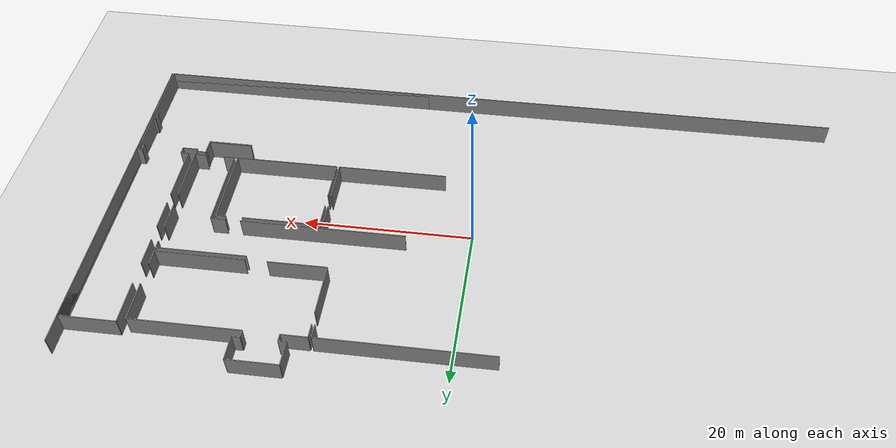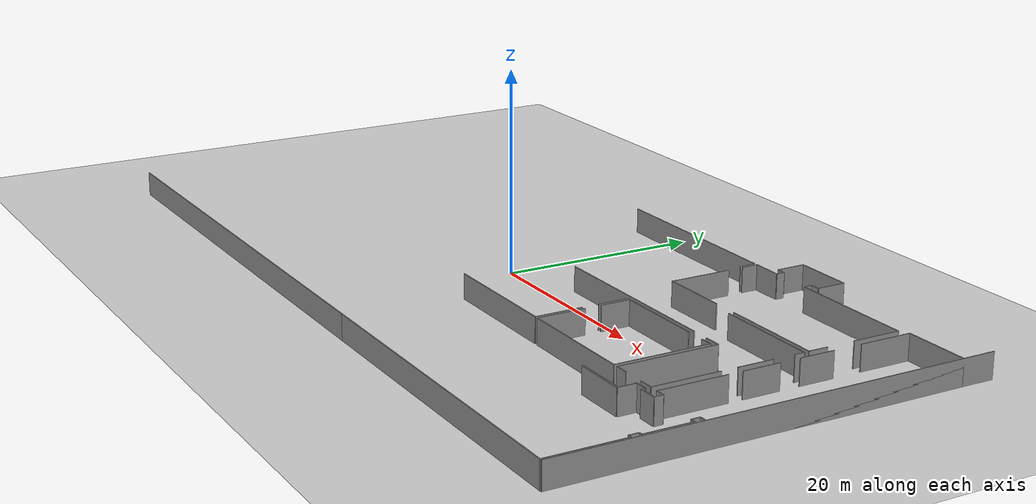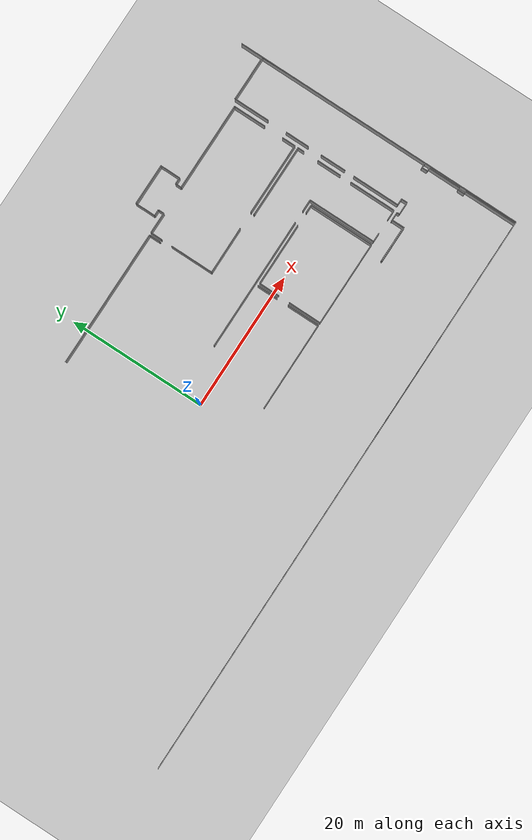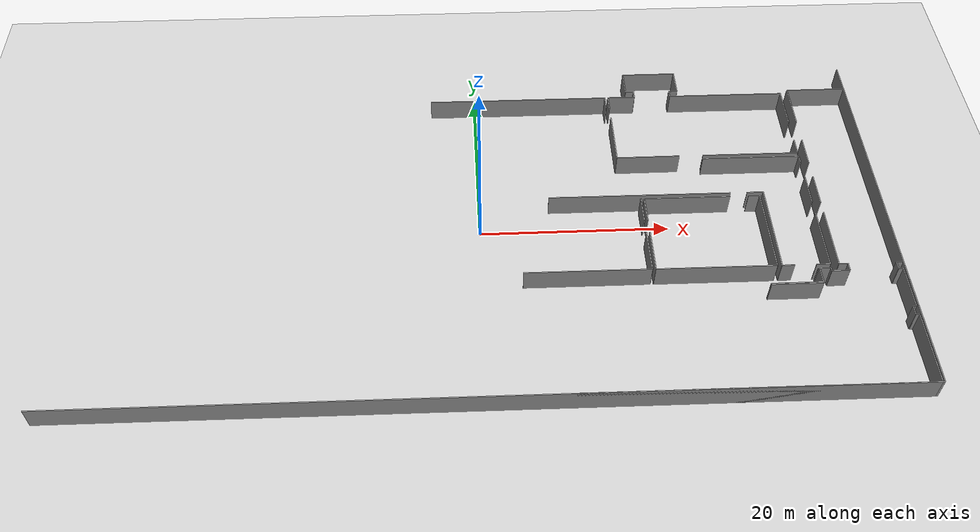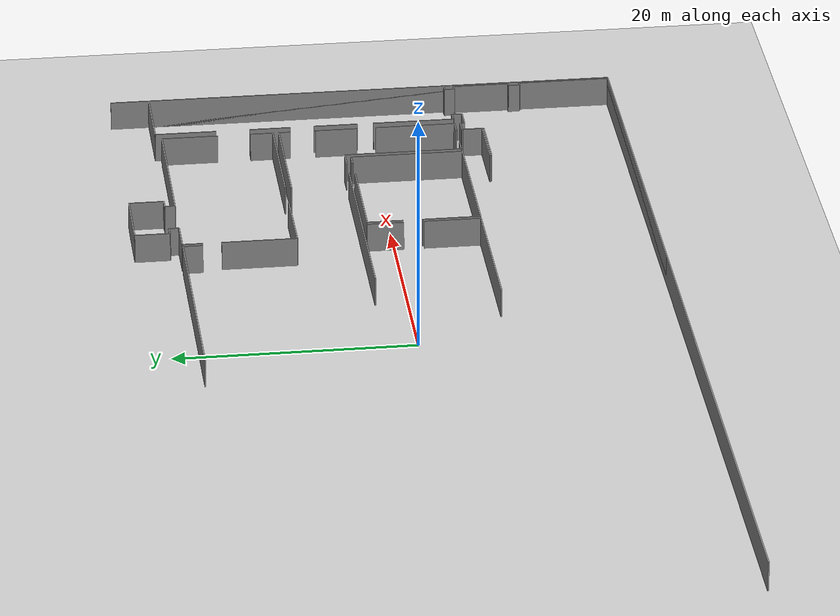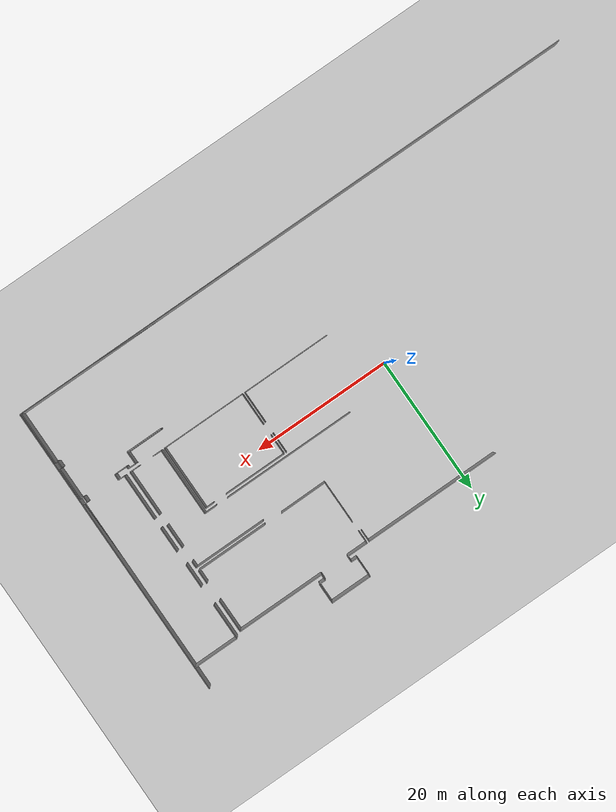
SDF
<sdf version="1.6">
 <world name="default">
  <model name="ground_plane">
   <static>1</static>
   <link name="link">
    <collision name="collision">
     <geometry><plane><normal>0 0 1</normal><size>100 100</size></plane></geometry>
     <surface><friction><ode><mu>100</mu><mu2>50</mu2></ode></friction></surface>
    </collision>
    <visual name="visual">
     <cast_shadows>0</cast_shadows>
     <geometry><plane><normal>0 0 1</normal><size>100 100</size></plane></geometry>
     <material>
      <script><uri>file://media/materials/scripts/gazebo.material</uri><name>Gazebo/Grey</name></script>
     </material>
    </visual>
   </link>
  </model>
  <model name="50052748">
   <static>1</static>
   <link name="Wall_18">
    <collision name="Wall_18_Collision">
     <geometry><box><size>10.5498647437 0.1 2.5</size></box></geometry>
     <pose>5.27493237185 0 1.25 0 0 0</pose>
    </collision>
    <visual name="Wall_18_Visual">
     <pose>5.27493237185 0 1.25 0 0 0</pose>
     <geometry><box><size>10.5498647437 0.1 2.5</size></box></geometry>
     <material>
      <script><uri>file://media/materials/scripts/gazebo.material</uri><name>Gazebo/Grey</name></script>
      <ambient>1 1 1 1</ambient>
     </material>
    </visual>
    <pose>67.1843987911 -13.728546372 0 0 0 0.0</pose>
   </link>
   <link name="Wall_19">
    <collision name="Wall_19_Collision">
     <geometry><box><size>0.96689549691 0.1 2.5</size></box></geometry>
     <pose>0.483447748455 0 1.25 0 0 0</pose>
    </collision>
    <visual name="Wall_19_Visual">
     <pose>0.483447748455 0 1.25 0 0 0</pose>
     <geometry><box><size>0.96689549691 0.1 2.5</size></box></geometry>
     <material>
      <script><uri>file://media/materials/scripts/gazebo.material</uri><name>Gazebo/Grey</name></script>
      <ambient>1 1 1 1</ambient>
     </material>
    </visual>
    <pose>77.7342635348 -13.728546372 0 0 0 -1.57079632679</pose>
   </link>
   <link name="Wall_20">
    <collision name="Wall_20_Collision">
     <geometry><box><size>3.53581406792 0.1 2.5</size></box></geometry>
     <pose>1.76790703396 0 1.25 0 0 0</pose>
    </collision>
    <visual name="Wall_20_Visual">
     <pose>1.76790703396 0 1.25 0 0 0</pose>
     <geometry><box><size>3.53581406792 0.1 2.5</size></box></geometry>
     <material>
      <script><uri>file://media/materials/scripts/gazebo.material</uri><name>Gazebo/Grey</name></script>
      <ambient>1 1 1 1</ambient>
     </material>
    </visual>
    <pose>77.7342635348 -16.8539625087 0 0 0 -1.57079632679</pose>
   </link>
   <link name="Wall_21">
    <collision name="Wall_21_Collision">
     <geometry><box><size>6.75850313823 0.1 2.5</size></box></geometry>
     <pose>3.37925156911 0 1.25 0 0 0</pose>
    </collision>
    <visual name="Wall_21_Visual">
     <pose>3.37925156911 0 1.25 0 0 0</pose>
     <geometry><box><size>6.75850313823 0.1 2.5</size></box></geometry>
     <material>
      <script><uri>file://media/materials/scripts/gazebo.material</uri><name>Gazebo/Grey</name></script>
      <ambient>1 1 1 1</ambient>
     </material>
    </visual>
    <pose>77.7342635348 -22.0008040553 0 0 0 -1.57079632679</pose>
   </link>
   <link name="Wall_22">
    <collision name="Wall_22_Collision">
     <geometry><box><size>1.40392617403 0.1 2.5</size></box></geometry>
     <pose>0.701963087014 0 1.25 0 0 0</pose>
    </collision>
    <visual name="Wall_22_Visual">
     <pose>0.701963087014 0 1.25 0 0 0</pose>
     <geometry><box><size>1.40392617403 0.1 2.5</size></box></geometry>
     <material>
      <script><uri>file://media/materials/scripts/gazebo.material</uri><name>Gazebo/Grey</name></script>
      <ambient>1 1 1 1</ambient>
     </material>
    </visual>
    <pose>77.7342635348 -28.7593071935 0 0 0 3.14159265359</pose>
   </link>
   <link name="Wall_23">
    <collision name="Wall_23_Collision">
     <geometry><box><size>1.29460509345 0.1 2.5</size></box></geometry>
     <pose>0.647302546725 0 1.25 0 0 0</pose>
    </collision>
    <visual name="Wall_23_Visual">
     <pose>0.647302546725 0 1.25 0 0 0</pose>
     <geometry><box><size>1.29460509345 0.1 2.5</size></box></geometry>
     <material>
      <script><uri>file://media/materials/scripts/gazebo.material</uri><name>Gazebo/Grey</name></script>
      <ambient>1 1 1 1</ambient>
     </material>
    </visual>
    <pose>74.1246387141 -28.7593071935 0 0 0 3.14159265359</pose>
   </link>
   <link name="Wall_24">
    <collision name="Wall_24_Collision">
     <geometry><box><size>9.9336337338 0.1 2.5</size></box></geometry>
     <pose>4.9668168669 0 1.25 0 0 0</pose>
    </collision>
    <visual name="Wall_24_Visual">
     <pose>4.9668168669 0 1.25 0 0 0</pose>
     <geometry><box><size>9.9336337338 0.1 2.5</size></box></geometry>
     <material>
      <script><uri>file://media/materials/scripts/gazebo.material</uri><name>Gazebo/Grey</name></script>
      <ambient>1 1 1 1</ambient>
     </material>
    </visual>
    <pose>72.8300336207 -28.7593071935 0 0 0 1.57079632679</pose>
   </link>
   <link name="Wall_25">
    <collision name="Wall_25_Collision">
     <geometry><box><size>1.73569409374 0.1 2.5</size></box></geometry>
     <pose>0.867847046872 0 1.25 0 0 0</pose>
    </collision>
    <visual name="Wall_25_Visual">
     <pose>0.867847046872 0 1.25 0 0 0</pose>
     <geometry><box><size>1.73569409374 0.1 2.5</size></box></geometry>
     <material>
      <script><uri>file://media/materials/scripts/gazebo.material</uri><name>Gazebo/Grey</name></script>
      <ambient>1 1 1 1</ambient>
     </material>
    </visual>
    <pose>72.8300336207 -18.8256734597 0 0 0 3.14159265359</pose>
   </link>
   <link name="Wall_26">
    <collision name="Wall_26_Collision">
     <geometry><box><size>19.3869902841 0.1 2.5</size></box></geometry>
     <pose>9.69349514206 0 1.25 0 0 0</pose>
    </collision>
    <visual name="Wall_26_Visual">
     <pose>9.69349514206 0 1.25 0 0 0</pose>
     <geometry><box><size>19.3869902841 0.1 2.5</size></box></geometry>
     <material>
      <script><uri>file://media/materials/scripts/gazebo.material</uri><name>Gazebo/Grey</name></script>
      <ambient>1 1 1 1</ambient>
     </material>
    </visual>
    <pose>69.3134965878 -18.8256734597 0 0 0 3.14159265359</pose>
   </link>
   <link name="Wall_111">
    <collision name="Wall_111_Collision">
     <geometry><box><size>1.64285995107 0.1 2.5</size></box></geometry>
     <pose>0.821429975536 0 1.25 0 0 0</pose>
    </collision>
    <visual name="Wall_111_Visual">
     <pose>0.821429975536 0 1.25 0 0 0</pose>
     <geometry><box><size>1.64285995107 0.1 2.5</size></box></geometry>
     <material>
      <script><uri>file://media/materials/scripts/gazebo.material</uri><name>Gazebo/Grey</name></script>
      <ambient>1 1 1 1</ambient>
     </material>
    </visual>
    <pose>57.4607832817 -5.41697368304 0 0 0 1.57079632679</pose>
   </link>
   <link name="Wall_112">
    <collision name="Wall_112_Collision">
     <geometry><box><size>19.9464047695 0.1 2.5</size></box></geometry>
     <pose>9.97320238477 0 1.25 0 0 0</pose>
    </collision>
    <visual name="Wall_112_Visual">
     <pose>9.97320238477 0 1.25 0 0 0</pose>
     <geometry><box><size>19.9464047695 0.1 2.5</size></box></geometry>
     <material>
      <script><uri>file://media/materials/scripts/gazebo.material</uri><name>Gazebo/Grey</name></script>
      <ambient>1 1 1 1</ambient>
     </material>
    </visual>
    <pose>57.4607832817 -3.77411373197 0 0 0 3.14159265359</pose>
   </link>
   <link name="Wall_114">
    <collision name="Wall_114_Collision">
     <geometry><box><size>6.26186583945 0.1 2.5</size></box></geometry>
     <pose>3.13093291972 0 1.25 0 0 0</pose>
    </collision>
    <visual name="Wall_114_Visual">
     <pose>3.13093291972 0 1.25 0 0 0</pose>
     <geometry><box><size>6.26186583945 0.1 2.5</size></box></geometry>
     <material>
      <script><uri>file://media/materials/scripts/gazebo.material</uri><name>Gazebo/Grey</name></script>
      <ambient>1 1 1 1</ambient>
     </material>
    </visual>
    <pose>57.8186766569 -13.2623464971 0 0 0 1.57079632679</pose>
   </link>
   <link name="Wall_115">
    <collision name="Wall_115_Collision">
     <geometry><box><size>1.68674057042 0.1 2.5</size></box></geometry>
     <pose>0.843370285211 0 1.25 0 0 0</pose>
    </collision>
    <visual name="Wall_115_Visual">
     <pose>0.843370285211 0 1.25 0 0 0</pose>
     <geometry><box><size>1.68674057042 0.1 2.5</size></box></geometry>
     <material>
      <script><uri>file://media/materials/scripts/gazebo.material</uri><name>Gazebo/Grey</name></script>
      <ambient>1 1 1 1</ambient>
     </material>
    </visual>
    <pose>57.8186766569 -5.43739212153 0 0 0 1.57079632679</pose>
   </link>
   <link name="Wall_116">
    <collision name="Wall_116_Collision">
     <geometry><box><size>3.03106012279 0.1 2.5</size></box></geometry>
     <pose>1.51553006139 0 1.25 0 0 0</pose>
    </collision>
    <visual name="Wall_116_Visual">
     <pose>1.51553006139 0 1.25 0 0 0</pose>
     <geometry><box><size>3.03106012279 0.1 2.5</size></box></geometry>
     <material>
      <script><uri>file://media/materials/scripts/gazebo.material</uri><name>Gazebo/Grey</name></script>
      <ambient>1 1 1 1</ambient>
     </material>
    </visual>
    <pose>57.8186766569 -3.7506515511 0 0 0 0.0</pose>
   </link>
   <link name="Wall_117">
    <collision name="Wall_117_Collision">
     <geometry><box><size>0.837029155247 0.1 2.5</size></box></geometry>
     <pose>0.418514577624 0 1.25 0 0 0</pose>
    </collision>
    <visual name="Wall_117_Visual">
     <pose>0.418514577624 0 1.25 0 0 0</pose>
     <geometry><box><size>0.837029155247 0.1 2.5</size></box></geometry>
     <material>
      <script><uri>file://media/materials/scripts/gazebo.material</uri><name>Gazebo/Grey</name></script>
      <ambient>1 1 1 1</ambient>
     </material>
    </visual>
    <pose>60.8497367797 -3.7506515511 0 0 0 1.57079632679</pose>
   </link>
   <link name="Wall_118">
    <collision name="Wall_118_Collision">
     <geometry><box><size>0.900440454887 0.1 2.5</size></box></geometry>
     <pose>0.450220227444 0 1.25 0 0 0</pose>
    </collision>
    <visual name="Wall_118_Visual">
     <pose>0.450220227444 0 1.25 0 0 0</pose>
     <geometry><box><size>0.900440454887 0.1 2.5</size></box></geometry>
     <material>
      <script><uri>file://media/materials/scripts/gazebo.material</uri><name>Gazebo/Grey</name></script>
      <ambient>1 1 1 1</ambient>
     </material>
    </visual>
    <pose>60.8497367797 -2.91362239586 0 0 0 3.14159265359</pose>
   </link>
   <link name="Wall_119">
    <collision name="Wall_119_Collision">
     <geometry><box><size>2.91362239586 0.1 2.5</size></box></geometry>
     <pose>1.45681119793 0 1.25 0 0 0</pose>
    </collision>
    <visual name="Wall_119_Visual">
     <pose>1.45681119793 0 1.25 0 0 0</pose>
     <geometry><box><size>2.91362239586 0.1 2.5</size></box></geometry>
     <material>
      <script><uri>file://media/materials/scripts/gazebo.material</uri><name>Gazebo/Grey</name></script>
      <ambient>1 1 1 1</ambient>
     </material>
    </visual>
    <pose>59.9492963248 -2.91362239586 0 0 0 1.57079632679</pose>
   </link>
   <link name="Wall_120">
    <collision name="Wall_120_Collision">
     <geometry><box><size>5.93796092088 0.1 2.5</size></box></geometry>
     <pose>2.96898046044 0 1.25 0 0 0</pose>
    </collision>
    <visual name="Wall_120_Visual">
     <pose>2.96898046044 0 1.25 0 0 0</pose>
     <geometry><box><size>5.93796092088 0.1 2.5</size></box></geometry>
     <material>
      <script><uri>file://media/materials/scripts/gazebo.material</uri><name>Gazebo/Grey</name></script>
      <ambient>1 1 1 1</ambient>
     </material>
    </visual>
    <pose>59.9492963248 -0.0 0 0 0 0.0</pose>
   </link>
   <link name="Wall_121">
    <collision name="Wall_121_Collision">
     <geometry><box><size>2.91527108965 0.1 2.5</size></box></geometry>
     <pose>1.45763554482 0 1.25 0 0 0</pose>
    </collision>
    <visual name="Wall_121_Visual">
     <pose>1.45763554482 0 1.25 0 0 0</pose>
     <geometry><box><size>2.91527108965 0.1 2.5</size></box></geometry>
     <material>
      <script><uri>file://media/materials/scripts/gazebo.material</uri><name>Gazebo/Grey</name></script>
      <ambient>1 1 1 1</ambient>
     </material>
    </visual>
    <pose>65.8872572457 -0.0 0 0 0 -1.57079632679</pose>
   </link>
   <link name="Wall_122">
    <collision name="Wall_122_Collision">
     <geometry><box><size>0.930243765718 0.1 2.5</size></box></geometry>
     <pose>0.465121882859 0 1.25 0 0 0</pose>
    </collision>
    <visual name="Wall_122_Visual">
     <pose>0.465121882859 0 1.25 0 0 0</pose>
     <geometry><box><size>0.930243765718 0.1 2.5</size></box></geometry>
     <material>
      <script><uri>file://media/materials/scripts/gazebo.material</uri><name>Gazebo/Grey</name></script>
      <ambient>1 1 1 1</ambient>
     </material>
    </visual>
    <pose>65.8872572457 -2.91527108965 0 0 0 3.14159265359</pose>
   </link>
   <link name="Wall_123">
    <collision name="Wall_123_Collision">
     <geometry><box><size>0.853516093154 0.1 2.5</size></box></geometry>
     <pose>0.426758046577 0 1.25 0 0 0</pose>
    </collision>
    <visual name="Wall_123_Visual">
     <pose>0.426758046577 0 1.25 0 0 0</pose>
     <geometry><box><size>0.853516093154 0.1 2.5</size></box></geometry>
     <material>
      <script><uri>file://media/materials/scripts/gazebo.material</uri><name>Gazebo/Grey</name></script>
      <ambient>1 1 1 1</ambient>
     </material>
    </visual>
    <pose>64.95701348 -2.91527108965 0 0 0 -1.57079632679</pose>
   </link>
   <link name="Wall_124">
    <collision name="Wall_124_Collision">
     <geometry><box><size>12.7667237791 0.1 2.5</size></box></geometry>
     <pose>6.38336188956 0 1.25 0 0 0</pose>
    </collision>
    <visual name="Wall_124_Visual">
     <pose>6.38336188956 0 1.25 0 0 0</pose>
     <geometry><box><size>12.7667237791 0.1 2.5</size></box></geometry>
     <material>
      <script><uri>file://media/materials/scripts/gazebo.material</uri><name>Gazebo/Grey</name></script>
      <ambient>1 1 1 1</ambient>
     </material>
    </visual>
    <pose>64.95701348 -3.7687871828 0 0 0 0.0</pose>
   </link>
   <link name="Wall_125">
    <collision name="Wall_125_Collision">
     <geometry><box><size>4.75014045603 0.1 2.5</size></box></geometry>
     <pose>2.37507022801 0 1.25 0 0 0</pose>
    </collision>
    <visual name="Wall_125_Visual">
     <pose>2.37507022801 0 1.25 0 0 0</pose>
     <geometry><box><size>4.75014045603 0.1 2.5</size></box></geometry>
     <material>
      <script><uri>file://media/materials/scripts/gazebo.material</uri><name>Gazebo/Grey</name></script>
      <ambient>1 1 1 1</ambient>
     </material>
    </visual>
    <pose>77.7237372591 -3.7687871828 0 0 0 -1.57079632679</pose>
   </link>
   <link name="Wall_126">
    <collision name="Wall_126_Collision">
     <geometry><box><size>1.93074725144 0.1 2.5</size></box></geometry>
     <pose>0.965373625719 0 1.25 0 0 0</pose>
    </collision>
    <visual name="Wall_126_Visual">
     <pose>0.965373625719 0 1.25 0 0 0</pose>
     <geometry><box><size>1.93074725144 0.1 2.5</size></box></geometry>
     <material>
      <script><uri>file://media/materials/scripts/gazebo.material</uri><name>Gazebo/Grey</name></script>
      <ambient>1 1 1 1</ambient>
     </material>
    </visual>
    <pose>77.7237372591 -11.2957084501 0 0 0 -1.57079632679</pose>
   </link>
   <link name="Wall_127">
    <collision name="Wall_127_Collision">
     <geometry><box><size>10.4699665062 0.1 2.5</size></box></geometry>
     <pose>5.23498325308 0 1.25 0 0 0</pose>
    </collision>
    <visual name="Wall_127_Visual">
     <pose>5.23498325308 0 1.25 0 0 0</pose>
     <geometry><box><size>10.4699665062 0.1 2.5</size></box></geometry>
     <material>
      <script><uri>file://media/materials/scripts/gazebo.material</uri><name>Gazebo/Grey</name></script>
      <ambient>1 1 1 1</ambient>
     </material>
    </visual>
    <pose>77.7237372591 -13.2264557015 0 0 0 3.14159265359</pose>
   </link>
   <link name="Wall_128">
    <collision name="Wall_128_Collision">
     <geometry><box><size>6.86563522402 0.1 2.5</size></box></geometry>
     <pose>3.43281761201 0 1.25 0 0 0</pose>
    </collision>
    <visual name="Wall_128_Visual">
     <pose>3.43281761201 0 1.25 0 0 0</pose>
     <geometry><box><size>6.86563522402 0.1 2.5</size></box></geometry>
     <material>
      <script><uri>file://media/materials/scripts/gazebo.material</uri><name>Gazebo/Grey</name></script>
      <ambient>1 1 1 1</ambient>
     </material>
    </visual>
    <pose>64.6842180689 -13.2264557015 0 0 0 -3.13636502965</pose>
   </link>
   <link name="Wall_137">
    <collision name="Wall_137_Collision">
     <geometry><box><size>3.05553688445 0.1 2.5</size></box></geometry>
     <pose>1.52776844223 0 1.25 0 0 0</pose>
    </collision>
    <visual name="Wall_137_Visual">
     <pose>1.52776844223 0 1.25 0 0 0</pose>
     <geometry><box><size>3.05553688445 0.1 2.5</size></box></geometry>
     <material>
      <script><uri>file://media/materials/scripts/gazebo.material</uri><name>Gazebo/Grey</name></script>
      <ambient>1 1 1 1</ambient>
     </material>
    </visual>
    <pose>59.6956511262 -19.2656210566 0 0 0 -1.57079632679</pose>
   </link>
   <link name="Wall_138">
    <collision name="Wall_138_Collision">
     <geometry><box><size>4.75977897357 0.1 2.5</size></box></geometry>
     <pose>2.37988948679 0 1.25 0 0 0</pose>
    </collision>
    <visual name="Wall_138_Visual">
     <pose>2.37988948679 0 1.25 0 0 0</pose>
     <geometry><box><size>4.75977897357 0.1 2.5</size></box></geometry>
     <material>
      <script><uri>file://media/materials/scripts/gazebo.material</uri><name>Gazebo/Grey</name></script>
      <ambient>1 1 1 1</ambient>
     </material>
    </visual>
    <pose>59.6956511262 -23.9930602674 0 0 0 -1.57079632679</pose>
   </link>
   <link name="Wall_139">
    <collision name="Wall_139_Collision">
     <geometry><box><size>13.0069365551 0.1 2.5</size></box></geometry>
     <pose>6.50346827757 0 1.25 0 0 0</pose>
    </collision>
    <visual name="Wall_139_Visual">
     <pose>6.50346827757 0 1.25 0 0 0</pose>
     <geometry><box><size>13.0069365551 0.1 2.5</size></box></geometry>
     <material>
      <script><uri>file://media/materials/scripts/gazebo.material</uri><name>Gazebo/Grey</name></script>
      <ambient>1 1 1 1</ambient>
     </material>
    </visual>
    <pose>59.6956511262 -28.7528392409 0 0 0 -3.14030560282</pose>
   </link>
   <link name="Wall_140">
    <collision name="Wall_140_Collision">
     <geometry><box><size>12.3069918567 0.1 2.5</size></box></geometry>
     <pose>6.15349592836 0 1.25 0 0 0</pose>
    </collision>
    <visual name="Wall_140_Visual">
     <pose>6.15349592836 0 1.25 0 0 0</pose>
     <geometry><box><size>12.3069918567 0.1 2.5</size></box></geometry>
     <material>
      <script><uri>file://media/materials/scripts/gazebo.material</uri><name>Gazebo/Grey</name></script>
      <ambient>1 1 1 1</ambient>
     </material>
    </visual>
    <pose>60.0537981466 -28.7672970173 0 0 0 0.0</pose>
   </link>
   <link name="Wall_141">
    <collision name="Wall_141_Collision">
     <geometry><box><size>9.45665393791 0.1 2.5</size></box></geometry>
     <pose>4.72832696895 0 1.25 0 0 0</pose>
    </collision>
    <visual name="Wall_141_Visual">
     <pose>4.72832696895 0 1.25 0 0 0</pose>
     <geometry><box><size>9.45665393791 0.1 2.5</size></box></geometry>
     <material>
      <script><uri>file://media/materials/scripts/gazebo.material</uri><name>Gazebo/Grey</name></script>
      <ambient>1 1 1 1</ambient>
     </material>
    </visual>
    <pose>72.3607900033 -28.7672970173 0 0 0 1.57079632679</pose>
   </link>
   <link name="Wall_142">
    <collision name="Wall_142_Collision">
     <geometry><box><size>1.20456104796 0.1 2.5</size></box></geometry>
     <pose>0.60228052398 0 1.25 0 0 0</pose>
    </collision>
    <visual name="Wall_142_Visual">
     <pose>0.60228052398 0 1.25 0 0 0</pose>
     <geometry><box><size>1.20456104796 0.1 2.5</size></box></geometry>
     <material>
      <script><uri>file://media/materials/scripts/gazebo.material</uri><name>Gazebo/Grey</name></script>
      <ambient>1 1 1 1</ambient>
     </material>
    </visual>
    <pose>72.3607900033 -19.3106430794 0 0 0 3.14159265359</pose>
   </link>
   <link name="Wall_143">
    <collision name="Wall_143_Collision">
     <geometry><box><size>9.15189923184 0.1 2.5</size></box></geometry>
     <pose>4.57594961592 0 1.25 0 0 0</pose>
    </collision>
    <visual name="Wall_143_Visual">
     <pose>4.57594961592 0 1.25 0 0 0</pose>
     <geometry><box><size>9.15189923184 0.1 2.5</size></box></geometry>
     <material>
      <script><uri>file://media/materials/scripts/gazebo.material</uri><name>Gazebo/Grey</name></script>
      <ambient>1 1 1 1</ambient>
     </material>
    </visual>
    <pose>69.2056973785 -19.3106430794 0 0 0 3.14159265359</pose>
   </link>
   <link name="Wall_144">
    <collision name="Wall_144_Collision">
     <geometry><box><size>2.98717950344 0.1 2.5</size></box></geometry>
     <pose>1.49358975172 0 1.25 0 0 0</pose>
    </collision>
    <visual name="Wall_144_Visual">
     <pose>1.49358975172 0 1.25 0 0 0</pose>
     <geometry><box><size>2.98717950344 0.1 2.5</size></box></geometry>
     <material>
      <script><uri>file://media/materials/scripts/gazebo.material</uri><name>Gazebo/Grey</name></script>
      <ambient>1 1 1 1</ambient>
     </material>
    </visual>
    <pose>60.0537981466 -19.3106430794 0 0 0 -1.57079632679</pose>
   </link>
   <link name="Wall_145">
    <collision name="Wall_145_Collision">
     <geometry><box><size>4.84665245408 0.1 2.5</size></box></geometry>
     <pose>2.42332622704 0 1.25 0 0 0</pose>
    </collision>
    <visual name="Wall_145_Visual">
     <pose>2.42332622704 0 1.25 0 0 0</pose>
     <geometry><box><size>4.84665245408 0.1 2.5</size></box></geometry>
     <material>
      <script><uri>file://media/materials/scripts/gazebo.material</uri><name>Gazebo/Grey</name></script>
      <ambient>1 1 1 1</ambient>
     </material>
    </visual>
    <pose>60.0537981466 -23.9206445632 0 0 0 -1.57079632679</pose>
   </link>
   <link name="Wall_177">
    <collision name="Wall_177_Collision">
     <geometry><box><size>0.139504859208 0.1 2.5</size></box></geometry>
     <pose>0.0697524296039 0 1.25 0 0 0</pose>
    </collision>
    <visual name="Wall_177_Visual">
     <pose>0.0697524296039 0 1.25 0 0 0</pose>
     <geometry><box><size>0.139504859208 0.1 2.5</size></box></geometry>
     <material>
      <script><uri>file://media/materials/scripts/gazebo.material</uri><name>Gazebo/Grey</name></script>
      <ambient>1 1 1 1</ambient>
     </material>
    </visual>
    <pose>76.3728229316 -29.2714168494 0 0 0 0.0</pose>
   </link>
   <link name="Wall_178">
    <collision name="Wall_178_Collision">
     <geometry><box><size>1.73341128696 0.1 2.5</size></box></geometry>
     <pose>0.866705643479 0 1.25 0 0 0</pose>
    </collision>
    <visual name="Wall_178_Visual">
     <pose>0.866705643479 0 1.25 0 0 0</pose>
     <geometry><box><size>1.73341128696 0.1 2.5</size></box></geometry>
     <material>
      <script><uri>file://media/materials/scripts/gazebo.material</uri><name>Gazebo/Grey</name></script>
      <ambient>1 1 1 1</ambient>
     </material>
    </visual>
    <pose>76.5123277908 -29.2714168494 0 0 0 -1.57079632679</pose>
   </link>
   <link name="Wall_179">
    <collision name="Wall_179_Collision">
     <geometry><box><size>5.21900360557 0.1 2.5</size></box></geometry>
     <pose>2.60950180278 0 1.25 0 0 0</pose>
    </collision>
    <visual name="Wall_179_Visual">
     <pose>2.60950180278 0 1.25 0 0 0</pose>
     <geometry><box><size>5.21900360557 0.1 2.5</size></box></geometry>
     <material>
      <script><uri>file://media/materials/scripts/gazebo.material</uri><name>Gazebo/Grey</name></script>
      <ambient>1 1 1 1</ambient>
     </material>
    </visual>
    <pose>76.5123277908 -31.0048281364 0 0 0 3.14159265359</pose>
   </link>
   <link name="Wall_180">
    <collision name="Wall_180_Collision">
     <geometry><box><size>0.116042678341 0.1 2.5</size></box></geometry>
     <pose>0.0580213391706 0 1.25 0 0 0</pose>
    </collision>
    <visual name="Wall_180_Visual">
     <pose>0.0580213391706 0 1.25 0 0 0</pose>
     <geometry><box><size>0.116042678341 0.1 2.5</size></box></geometry>
     <material>
      <script><uri>file://media/materials/scripts/gazebo.material</uri><name>Gazebo/Grey</name></script>
      <ambient>1 1 1 1</ambient>
     </material>
    </visual>
    <pose>71.2933241852 -31.0048281364 0 0 0 -1.57079632679</pose>
   </link>
   <link name="Wall_181">
    <collision name="Wall_181_Collision">
     <geometry><box><size>5.24715822261 0.1 2.5</size></box></geometry>
     <pose>2.6235791113 0 1.25 0 0 0</pose>
    </collision>
    <visual name="Wall_181_Visual">
     <pose>2.6235791113 0 1.25 0 0 0</pose>
     <geometry><box><size>5.24715822261 0.1 2.5</size></box></geometry>
     <material>
      <script><uri>file://media/materials/scripts/gazebo.material</uri><name>Gazebo/Grey</name></script>
      <ambient>1 1 1 1</ambient>
     </material>
    </visual>
    <pose>71.2933241852 -31.1208708147 0 0 0 0.0</pose>
   </link>
   <link name="Wall_182">
    <collision name="Wall_182_Collision">
     <geometry><box><size>1.86289716082 0.1 2.5</size></box></geometry>
     <pose>0.931448580411 0 1.25 0 0 0</pose>
    </collision>
    <visual name="Wall_182_Visual">
     <pose>0.931448580411 0 1.25 0 0 0</pose>
     <geometry><box><size>1.86289716082 0.1 2.5</size></box></geometry>
     <material>
      <script><uri>file://media/materials/scripts/gazebo.material</uri><name>Gazebo/Grey</name></script>
      <ambient>1 1 1 1</ambient>
     </material>
    </visual>
    <pose>76.5404824078 -31.1208708147 0 0 0 1.57079632679</pose>
   </link>
   <link name="Wall_183">
    <collision name="Wall_183_Collision">
     <geometry><box><size>1.15154920146 0.1 2.5</size></box></geometry>
     <pose>0.575774600731 0 1.25 0 0 0</pose>
    </collision>
    <visual name="Wall_183_Visual">
     <pose>0.575774600731 0 1.25 0 0 0</pose>
     <geometry><box><size>1.15154920146 0.1 2.5</size></box></geometry>
     <material>
      <script><uri>file://media/materials/scripts/gazebo.material</uri><name>Gazebo/Grey</name></script>
      <ambient>1 1 1 1</ambient>
     </material>
    </visual>
    <pose>76.5404824078 -29.2579736539 0 0 0 0.0</pose>
   </link>
   <link name="Wall_184">
    <collision name="Wall_184_Collision">
     <geometry><box><size>0.373999845276 0.1 2.5</size></box></geometry>
     <pose>0.186999922638 0 1.25 0 0 0</pose>
    </collision>
    <visual name="Wall_184_Visual">
     <pose>0.186999922638 0 1.25 0 0 0</pose>
     <geometry><box><size>0.373999845276 0.1 2.5</size></box></geometry>
     <material>
      <script><uri>file://media/materials/scripts/gazebo.material</uri><name>Gazebo/Grey</name></script>
      <ambient>1 1 1 1</ambient>
     </material>
    </visual>
    <pose>77.6920316093 -29.2579736539 0 0 0 -1.57079632679</pose>
   </link>
   <link name="Wall_185">
    <collision name="Wall_185_Collision">
     <geometry><box><size>1.8315719788 0.1 2.5</size></box></geometry>
     <pose>0.9157859894 0 1.25 0 0 0</pose>
    </collision>
    <visual name="Wall_185_Visual">
     <pose>0.9157859894 0 1.25 0 0 0</pose>
     <geometry><box><size>1.8315719788 0.1 2.5</size></box></geometry>
     <material>
      <script><uri>file://media/materials/scripts/gazebo.material</uri><name>Gazebo/Grey</name></script>
      <ambient>1 1 1 1</ambient>
     </material>
    </visual>
    <pose>77.6920316093 -29.6319734991 0 0 0 0.0</pose>
   </link>
   <link name="Wall_186">
    <collision name="Wall_186_Collision">
     <geometry><box><size>0.853516093154 0.1 2.5</size></box></geometry>
     <pose>0.426758046577 0 1.25 0 0 0</pose>
    </collision>
    <visual name="Wall_186_Visual">
     <pose>0.426758046577 0 1.25 0 0 0</pose>
     <geometry><box><size>0.853516093154 0.1 2.5</size></box></geometry>
     <material>
      <script><uri>file://media/materials/scripts/gazebo.material</uri><name>Gazebo/Grey</name></script>
      <ambient>1 1 1 1</ambient>
     </material>
    </visual>
    <pose>79.5236035881 -29.6319734991 0 0 0 1.57079632679</pose>
   </link>
   <link name="Wall_187">
    <collision name="Wall_187_Collision">
     <geometry><box><size>0.920605248173 0.1 2.5</size></box></geometry>
     <pose>0.460302624086 0 1.25 0 0 0</pose>
    </collision>
    <visual name="Wall_187_Visual">
     <pose>0.460302624086 0 1.25 0 0 0</pose>
     <geometry><box><size>0.920605248173 0.1 2.5</size></box></geometry>
     <material>
      <script><uri>file://media/materials/scripts/gazebo.material</uri><name>Gazebo/Grey</name></script>
      <ambient>1 1 1 1</ambient>
     </material>
    </visual>
    <pose>79.5236035881 -28.778457406 0 0 0 3.14159265359</pose>
   </link>
   <link name="Wall_188">
    <collision name="Wall_188_Collision">
     <geometry><box><size>6.86617552501 0.1 2.5</size></box></geometry>
     <pose>3.43308776251 0 1.25 0 0 0</pose>
    </collision>
    <visual name="Wall_188_Visual">
     <pose>3.43308776251 0 1.25 0 0 0</pose>
     <geometry><box><size>6.86617552501 0.1 2.5</size></box></geometry>
     <material>
      <script><uri>file://media/materials/scripts/gazebo.material</uri><name>Gazebo/Grey</name></script>
      <ambient>1 1 1 1</ambient>
     </material>
    </visual>
    <pose>78.6029983399 -28.778457406 0 0 0 1.57079632679</pose>
   </link>
   <link name="Wall_189">
    <collision name="Wall_189_Collision">
     <geometry><box><size>3.73035993522 0.1 2.5</size></box></geometry>
     <pose>1.86517996761 0 1.25 0 0 0</pose>
    </collision>
    <visual name="Wall_189_Visual">
     <pose>1.86517996761 0 1.25 0 0 0</pose>
     <geometry><box><size>3.73035993522 0.1 2.5</size></box></geometry>
     <material>
      <script><uri>file://media/materials/scripts/gazebo.material</uri><name>Gazebo/Grey</name></script>
      <ambient>1 1 1 1</ambient>
     </material>
    </visual>
    <pose>78.6029983399 -20.53143742 0 0 0 1.57079632679</pose>
   </link>
   <link name="Wall_190">
    <collision name="Wall_190_Collision">
     <geometry><box><size>3.50195243392 0.1 2.5</size></box></geometry>
     <pose>1.75097621696 0 1.25 0 0 0</pose>
    </collision>
    <visual name="Wall_190_Visual">
     <pose>1.75097621696 0 1.25 0 0 0</pose>
     <geometry><box><size>3.50195243392 0.1 2.5</size></box></geometry>
     <material>
      <script><uri>file://media/materials/scripts/gazebo.material</uri><name>Gazebo/Grey</name></script>
      <ambient>1 1 1 1</ambient>
     </material>
    </visual>
    <pose>78.6029983399 -14.8095822083 0 0 0 1.57079632679</pose>
   </link>
   <link name="Wall_191">
    <collision name="Wall_191_Collision">
     <geometry><box><size>5.20517994224 0.1 2.5</size></box></geometry>
     <pose>2.60258997112 0 1.25 0 0 0</pose>
    </collision>
    <visual name="Wall_191_Visual">
     <pose>2.60258997112 0 1.25 0 0 0</pose>
     <geometry><box><size>5.20517994224 0.1 2.5</size></box></geometry>
     <material>
      <script><uri>file://media/materials/scripts/gazebo.material</uri><name>Gazebo/Grey</name></script>
      <ambient>1 1 1 1</ambient>
     </material>
    </visual>
    <pose>78.6029983399 -8.47339832569 0 0 0 1.57079632679</pose>
   </link>
   <link name="Wall_192">
    <collision name="Wall_192_Collision">
     <geometry><box><size>6.58234654783 0.1 2.5</size></box></geometry>
     <pose>3.29117327391 0 1.25 0 0 0</pose>
    </collision>
    <visual name="Wall_192_Visual">
     <pose>3.29117327391 0 1.25 0 0 0</pose>
     <geometry><box><size>6.58234654783 0.1 2.5</size></box></geometry>
     <material>
      <script><uri>file://media/materials/scripts/gazebo.material</uri><name>Gazebo/Grey</name></script>
      <ambient>1 1 1 1</ambient>
     </material>
    </visual>
    <pose>78.6029983399 -3.26821838344 0 0 0 0.0</pose>
   </link>
   <link name="Wall_193">
    <collision name="Wall_193_Collision">
     <geometry><box><size>25.4806893569 0.1 2.5</size></box></geometry>
     <pose>12.7403446785 0 1.25 0 0 0</pose>
    </collision>
    <visual name="Wall_193_Visual">
     <pose>12.7403446785 0 1.25 0 0 0</pose>
     <geometry><box><size>25.4806893569 0.1 2.5</size></box></geometry>
     <material>
      <script><uri>file://media/materials/scripts/gazebo.material</uri><name>Gazebo/Grey</name></script>
      <ambient>1 1 1 1</ambient>
     </material>
    </visual>
    <pose>85.1853448877 -3.26821838344 0 0 0 -1.57079632679</pose>
   </link>
   <link name="Wall_194">
    <collision name="Wall_194_Collision">
     <geometry><box><size>0.715533105137 0.1 2.5</size></box></geometry>
     <pose>0.357766552569 0 1.25 0 0 0</pose>
    </collision>
    <visual name="Wall_194_Visual">
     <pose>0.357766552569 0 1.25 0 0 0</pose>
     <geometry><box><size>0.715533105137 0.1 2.5</size></box></geometry>
     <material>
      <script><uri>file://media/materials/scripts/gazebo.material</uri><name>Gazebo/Grey</name></script>
      <ambient>1 1 1 1</ambient>
     </material>
    </visual>
    <pose>85.1853448877 -28.7489077404 0 0 0 3.14159265359</pose>
   </link>
   <link name="Wall_195">
    <collision name="Wall_195_Collision">
     <geometry><box><size>0.850472350771 0.1 2.5</size></box></geometry>
     <pose>0.425236175386 0 1.25 0 0 0</pose>
    </collision>
    <visual name="Wall_195_Visual">
     <pose>0.425236175386 0 1.25 0 0 0</pose>
     <geometry><box><size>0.850472350771 0.1 2.5</size></box></geometry>
     <material>
      <script><uri>file://media/materials/scripts/gazebo.material</uri><name>Gazebo/Grey</name></script>
      <ambient>1 1 1 1</ambient>
     </material>
    </visual>
    <pose>84.4698117826 -28.7489077404 0 0 0 -1.57079632679</pose>
   </link>
   <link name="Wall_196">
    <collision name="Wall_196_Collision">
     <geometry><box><size>0.483574571054 0.1 2.5</size></box></geometry>
     <pose>0.241787285527 0 1.25 0 0 0</pose>
    </collision>
    <visual name="Wall_196_Visual">
     <pose>0.241787285527 0 1.25 0 0 0</pose>
     <geometry><box><size>0.483574571054 0.1 2.5</size></box></geometry>
     <material>
      <script><uri>file://media/materials/scripts/gazebo.material</uri><name>Gazebo/Grey</name></script>
      <ambient>1 1 1 1</ambient>
     </material>
    </visual>
    <pose>84.4698117826 -29.5993800911 0 0 0 0.0</pose>
   </link>
   <link name="Wall_197">
    <collision name="Wall_197_Collision">
     <geometry><box><size>4.71145956325 0.1 2.5</size></box></geometry>
     <pose>2.35572978162 0 1.25 0 0 0</pose>
    </collision>
    <visual name="Wall_197_Visual">
     <pose>2.35572978162 0 1.25 0 0 0</pose>
     <geometry><box><size>4.71145956325 0.1 2.5</size></box></geometry>
     <material>
      <script><uri>file://media/materials/scripts/gazebo.material</uri><name>Gazebo/Grey</name></script>
      <ambient>1 1 1 1</ambient>
     </material>
    </visual>
    <pose>84.9533863536 -29.5993800911 0 0 0 -1.57079632679</pose>
   </link>
   <link name="Wall_198">
    <collision name="Wall_198_Collision">
     <geometry><box><size>0.333543436106 0.1 2.5</size></box></geometry>
     <pose>0.166771718053 0 1.25 0 0 0</pose>
    </collision>
    <visual name="Wall_198_Visual">
     <pose>0.166771718053 0 1.25 0 0 0</pose>
     <geometry><box><size>0.333543436106 0.1 2.5</size></box></geometry>
     <material>
      <script><uri>file://media/materials/scripts/gazebo.material</uri><name>Gazebo/Grey</name></script>
      <ambient>1 1 1 1</ambient>
     </material>
    </visual>
    <pose>84.9533863536 -34.3108396544 0 0 0 3.14159265359</pose>
   </link>
   <link name="Wall_199">
    <collision name="Wall_199_Collision">
     <geometry><box><size>0.967275964708 0.1 2.5</size></box></geometry>
     <pose>0.483637982354 0 1.25 0 0 0</pose>
    </collision>
    <visual name="Wall_199_Visual">
     <pose>0.483637982354 0 1.25 0 0 0</pose>
     <geometry><box><size>0.967275964708 0.1 2.5</size></box></geometry>
     <material>
      <script><uri>file://media/materials/scripts/gazebo.material</uri><name>Gazebo/Grey</name></script>
      <ambient>1 1 1 1</ambient>
     </material>
    </visual>
    <pose>84.6198429175 -34.3108396544 0 0 0 -1.57079632679</pose>
   </link>
   <link name="Wall_200">
    <collision name="Wall_200_Collision">
     <geometry><box><size>0.366897779717 0.1 2.5</size></box></geometry>
     <pose>0.183448889858 0 1.25 0 0 0</pose>
    </collision>
    <visual name="Wall_200_Visual">
     <pose>0.183448889858 0 1.25 0 0 0</pose>
     <geometry><box><size>0.366897779717 0.1 2.5</size></box></geometry>
     <material>
      <script><uri>file://media/materials/scripts/gazebo.material</uri><name>Gazebo/Grey</name></script>
      <ambient>1 1 1 1</ambient>
     </material>
    </visual>
    <pose>84.6198429175 -35.2781156191 0 0 0 0.0</pose>
   </link>
   <link name="Wall_201">
    <collision name="Wall_201_Collision">
     <geometry><box><size>7.72413040914 0.1 2.5</size></box></geometry>
     <pose>3.86206520457 0 1.25 0 0 0</pose>
    </collision>
    <visual name="Wall_201_Visual">
     <pose>3.86206520457 0 1.25 0 0 0</pose>
     <geometry><box><size>7.72413040914 0.1 2.5</size></box></geometry>
     <material>
      <script><uri>file://media/materials/scripts/gazebo.material</uri><name>Gazebo/Grey</name></script>
      <ambient>1 1 1 1</ambient>
     </material>
    </visual>
    <pose>84.9867406972 -35.2781156191 0 0 0 -1.57079632679</pose>
   </link>
   <link name="Wall_202">
    <collision name="Wall_202_Collision">
     <geometry><box><size>34.105260221 0.1 2.5</size></box></geometry>
     <pose>17.0526301105 0 1.25 0 0 0</pose>
    </collision>
    <visual name="Wall_202_Visual">
     <pose>17.0526301105 0 1.25 0 0 0</pose>
     <geometry><box><size>34.105260221 0.1 2.5</size></box></geometry>
     <material>
      <script><uri>file://media/materials/scripts/gazebo.material</uri><name>Gazebo/Grey</name></script>
      <ambient>1 1 1 1</ambient>
     </material>
    </visual>
    <pose>84.9867406972 -43.0022460282 0 0 0 3.14159265359</pose>
   </link>
   <link name="Wall_250">
    <collision name="Wall_250_Collision">
     <geometry><box><size>43.0022460282 0.1 2.5</size></box></geometry>
     <pose>21.5011230141 0 1.25 0 0 0</pose>
    </collision>
    <visual name="Wall_250_Visual">
     <pose>21.5011230141 0 1.25 0 0 0</pose>
     <geometry><box><size>43.0022460282 0.1 2.5</size></box></geometry>
     <material>
      <script><uri>file://media/materials/scripts/gazebo.material</uri><name>Gazebo/Grey</name></script>
      <ambient>1 1 1 1</ambient>
     </material>
    </visual>
    <pose>85.1853448877 -43.0022460282 0 0 0 1.57079632679</pose>
   </link>
   <link name="Wall_251">
    <collision name="Wall_251_Collision">
     <geometry><box><size>85.1853448877 0.1 2.5</size></box></geometry>
     <pose>42.5926724439 0 1.25 0 0 0</pose>
    </collision>
    <visual name="Wall_251_Visual">
     <pose>42.5926724439 0 1.25 0 0 0</pose>
     <geometry><box><size>85.1853448877 0.1 2.5</size></box></geometry>
     <material>
      <script><uri>file://media/materials/scripts/gazebo.material</uri><name>Gazebo/Grey</name></script>
      <ambient>1 1 1 1</ambient>
     </material>
    </visual>
    <pose>85.1853448877 -43.0022460282 0 0 0 3.14159265359</pose>
   </link>
   <pose>-42.55 21.5022460282 0 0 0 0</pose>
  </model>
 </world>
</sdf>
